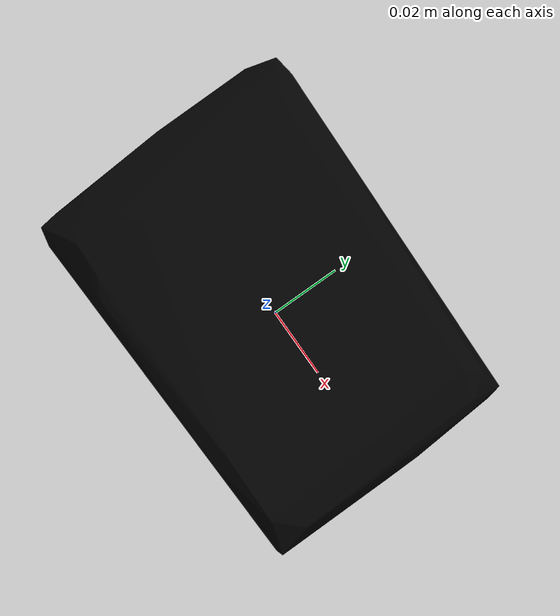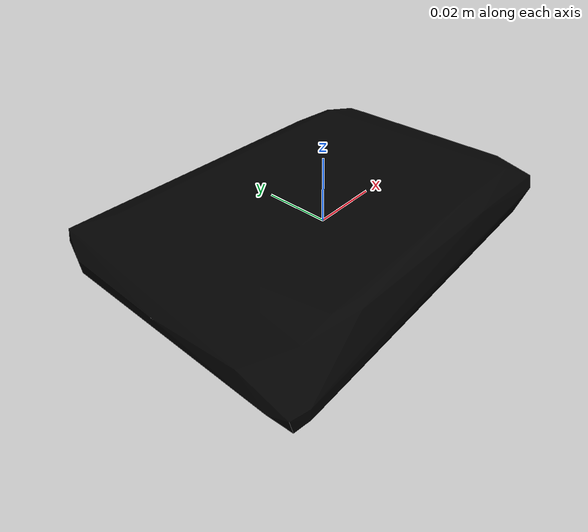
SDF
<?xml version="1.0"?>
<sdf version="1.4">
  <model name="026_sponge_textured">
    <pose>0 0 0  0 0 0</pose>
    <link name="body">
      <inertial>
        <mass> 1.0 </mass>
        <pose>0 0 0 0 0 0</pose>
        <inertia>
          <ixx>0.00043545265168380655</ixx>
          <ixy>0.0</ixy>
          <ixz>0.0</ixz>
          <iyy>0.0008830518534093826</iyy>
          <iyz>0.0</iyz>
          <izz>0.0012778959680168108</izz>
        </inertia>
      </inertial>
      <visual name="visual">
        <geometry>
          <mesh>
            <uri>model://026_sponge_textured/textured.dae</uri>
          </mesh>
        </geometry>
        <pose>0.011447545298808528 -0.015819757898154468 0.009499482567303664 3.1315293921484932 -0.015433495604842784 -1.581387058420702</pose>
      </visual>
      <collision name="collision">
        <geometry>
          <mesh>
            <uri>model://026_sponge_textured/textured.col.dae</uri>
          </mesh>
        </geometry>
        <max_contacts>10</max_contacts>
        <surface>
          <friction>
            <ode>
              <mu>0.8</mu>
              <mu2>0.8</mu2>
              <slip1>0</slip1>
              <slip2>0</slip2>
            </ode>
            <torsional>
              <ode/>
            </torsional>
          </friction>
          <contact>
            <ode>
              <kp>1000000.0</kp>
              <kd>1.0</kd>
              <max_vel>0.0</max_vel>
            </ode>
          </contact>
        </surface>
        <pose>0.011447545298808528 -0.015819757898154468 0.009499482567303664 3.1315293921484932 -0.015433495604842784 -1.581387058420702</pose>
      </collision>
    </link>
  </model>
</sdf>
